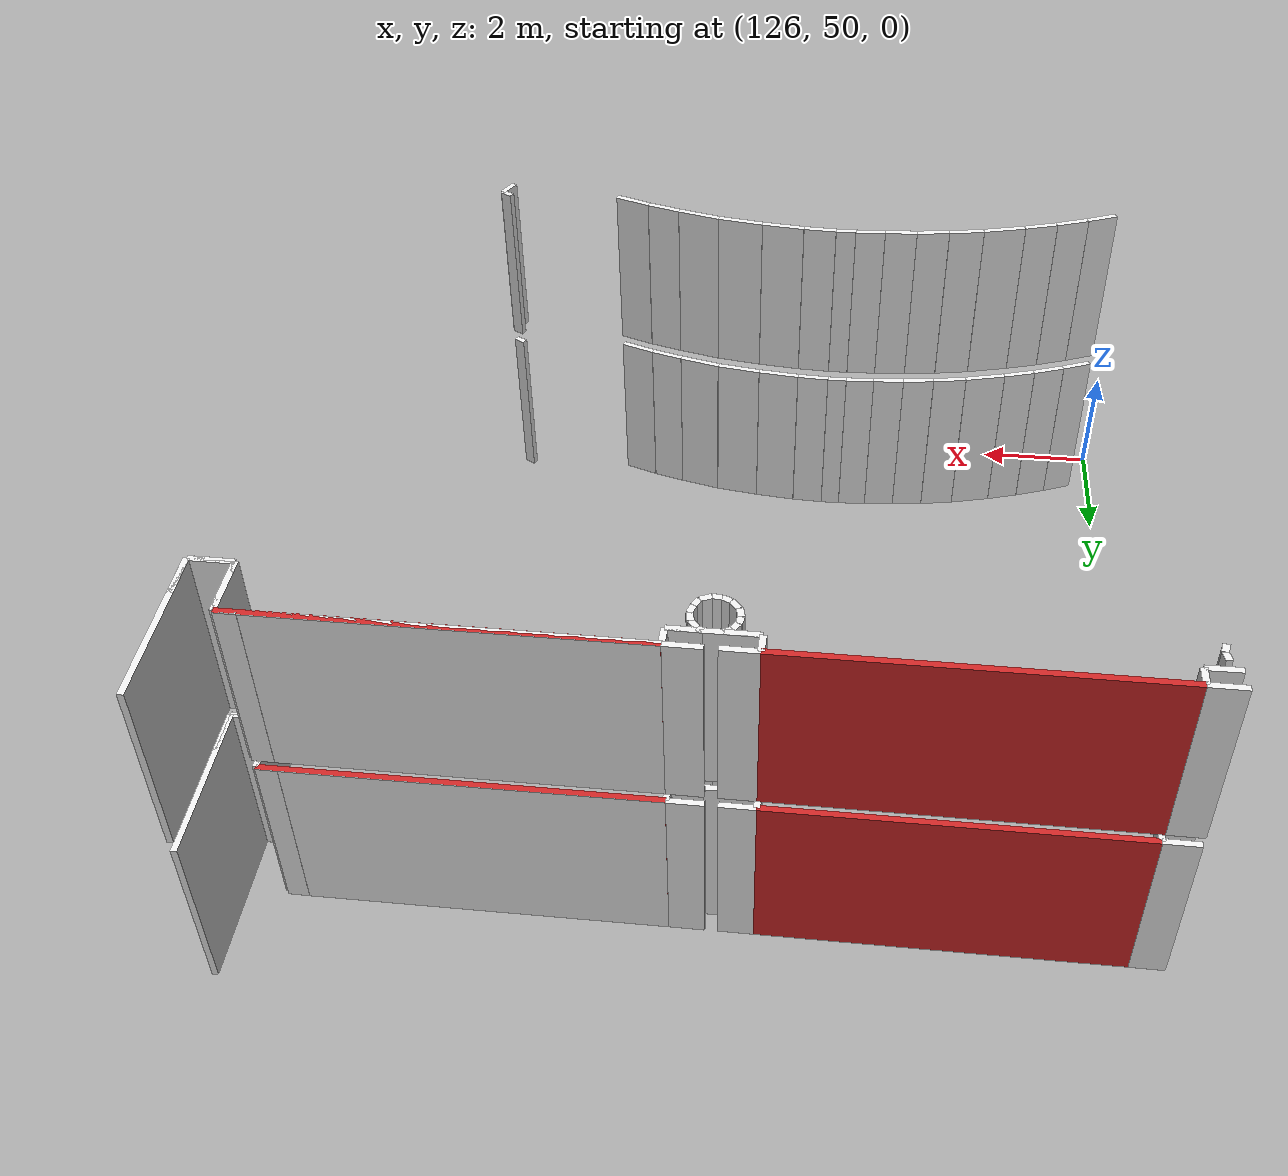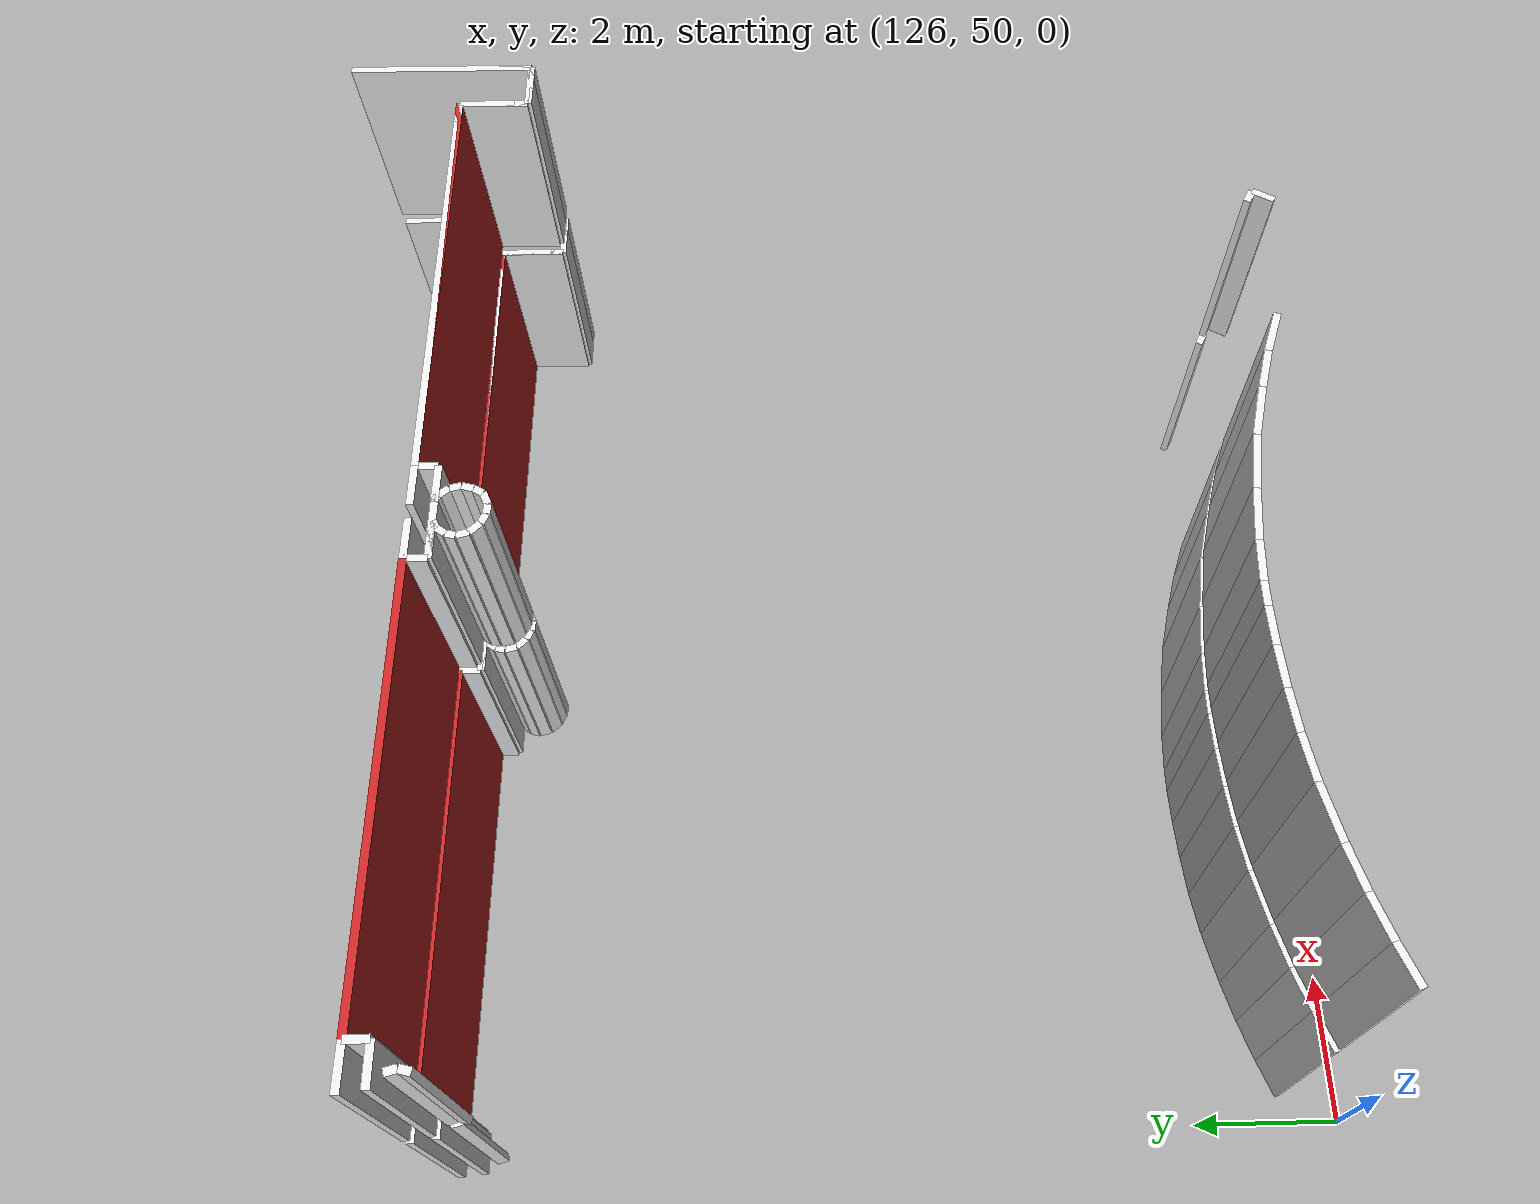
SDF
<sdf version="1.6">
 <world name="default">
  <model name="wall_129.0_62.0_0.0">
   <static>true</static>
   <pose>129.01999999998952 62.049999999813735 1.5 0 0 -0.014034166280132265</pose>
   <link name="link">
    <visual name="visual">
     <geometry><box><size>5.7005613758773475 0.1 3</size></box></geometry>
     <material>
      <script><uri>file://media/materials/scripts/gazebo.material</uri><name>Gazebo/Red</name></script>
     </material>
    </visual>
   </link>
  </model>
  <model name="wall_136.2_62.0_0.0">
   <static>true</static>
   <pose>136.19500000000698 61.950000000186265 1.5 0 0 -0.013266220046968015</pose>
   <link name="link">
    <visual name="visual">
     <geometry><box><size>6.030530656612972 0.1 3</size></box></geometry>
     <material>
      <script><uri>file://media/materials/scripts/gazebo.material</uri><name>Gazebo/Red</name></script>
     </material>
    </visual>
   </link>
  </model>
  <model name="wall_125.9_62.1_0.0">
   <static>true</static>
   <pose>125.88999999998487 62.09499999997206 1.5 0 0 -0.017855245571888664</pose>
   <link name="link">
    <visual name="visual">
     <geometry><box><size>0.5600892785996132 0.1 3</size></box></geometry>
     <material>
      <script><uri>file://media/materials/scripts/gazebo.material</uri><name>Gazebo/White</name></script>
     </material>
    </visual>
   </link>
  </model>
  <model name="wall_132.1_62.0_0.0">
   <static>true</static>
   <pose>132.14999999999418 62.00499999988824 1.5 0 0 -0.017855244740615724</pose>
   <link name="link">
    <visual name="visual">
     <geometry><box><size>0.5600892785912992 0.1 3</size></box></geometry>
     <material>
      <script><uri>file://media/materials/scripts/gazebo.material</uri><name>Gazebo/White</name></script>
     </material>
    </visual>
   </link>
  </model>
  <model name="wall_139.0_61.9_0.0">
   <static>true</static>
   <pose>139.04000000000815 61.91500000003725 1.5 0 0 3.112189366044838</pose>
   <link name="link">
    <visual name="visual">
     <geometry><box><size>0.34014702705292804 0.1 3</size></box></geometry>
     <material>
      <script><uri>file://media/materials/scripts/gazebo.material</uri><name>Gazebo/White</name></script>
     </material>
    </visual>
   </link>
  </model>
  <model name="wall_136.0_62.0_0.0">
   <static>true</static>
   <pose>136.02499999999418 61.955000000074506 1.5 0 0 3.1292909894057774</pose>
   <link name="link">
    <visual name="visual">
     <geometry><box><size>5.690430563680416 0.1 3</size></box></geometry>
     <material>
      <script><uri>file://media/materials/scripts/gazebo.material</uri><name>Gazebo/White</name></script>
     </material>
    </visual>
   </link>
  </model>
  <model name="wall_132.9_62.0_0.0">
   <static>true</static>
   <pose>132.89999999999418 61.99500000011176 1.5 0 0 3.1237374088491774</pose>
   <link name="link">
    <visual name="visual">
     <geometry><box><size>0.5600892785912992 0.1 3</size></box></geometry>
     <material>
      <script><uri>file://media/materials/scripts/gazebo.material</uri><name>Gazebo/White</name></script>
     </material>
    </visual>
   </link>
  </model>
  <model name="wall_137.2_51.0_0.0">
   <static>true</static>
   <pose>137.19999999998254 51.0 1.5 0 0 2.6344941507624737</pose>
   <link name="link">
    <visual name="visual">
     <geometry><box><size>0.205912602632718 0.1 3</size></box></geometry>
     <material>
      <script><uri>file://media/materials/scripts/gazebo.material</uri><name>Gazebo/White</name></script>
     </material>
    </visual>
   </link>
  </model>
  <model name="wall_134.9_51.0_0.0">
   <static>true</static>
   <pose>134.91500000000815 51.03500000014901 1.5 0 0 2.799642826681837</pose>
   <link name="link">
    <visual name="visual">
     <geometry><box><size>0.6262587324856838 0.1 3</size></box></geometry>
     <material>
      <script><uri>file://media/materials/scripts/gazebo.material</uri><name>Gazebo/White</name></script>
     </material>
    </visual>
   </link>
  </model>
  <model name="wall_134.3_51.2_0.0">
   <static>true</static>
   <pose>134.3399999999965 51.21999999997206 1.5 0 0 2.863292995106354</pose>
   <link name="link">
    <visual name="visual">
     <geometry><box><size>0.5824087910532124 0.1 3</size></box></geometry>
     <material>
      <script><uri>file://media/materials/scripts/gazebo.material</uri><name>Gazebo/White</name></script>
     </material>
    </visual>
   </link>
  </model>
  <model name="wall_133.7_51.4_0.0">
   <static>true</static>
   <pose>133.70000000001164 51.389999999897555 1.5 0 0 2.896613990234664</pose>
   <link name="link">
    <visual name="visual">
     <geometry><box><size>0.7421590126247316 0.1 3</size></box></geometry>
     <material>
      <script><uri>file://media/materials/scripts/gazebo.material</uri><name>Gazebo/White</name></script>
     </material>
    </visual>
   </link>
  </model>
  <model name="wall_133.0_51.5_0.0">
   <static>true</static>
   <pose>132.95000000001164 51.54000000003725 1.5 0 0 2.9889433250599438</pose>
   <link name="link">
    <visual name="visual">
     <geometry><box><size>0.7891767863225628 0.1 3</size></box></geometry>
     <material>
      <script><uri>file://media/materials/scripts/gazebo.material</uri><name>Gazebo/White</name></script>
     </material>
    </visual>
   </link>
  </model>
  <model name="wall_132.2_51.6_0.0">
   <static>true</static>
   <pose>132.19500000000698 51.640000000130385 1.5 0 0 3.0324391905773007</pose>
   <link name="link">
    <visual name="visual">
     <geometry><box><size>0.7343704786990871 0.1 3</size></box></geometry>
     <material>
      <script><uri>file://media/materials/scripts/gazebo.material</uri><name>Gazebo/White</name></script>
     </material>
    </visual>
   </link>
  </model>
  <model name="wall_131.6_51.7_0.0">
   <static>true</static>
   <pose>131.55000000001746 51.69500000006519 1.5 0 0 3.0880723854950856</pose>
   <link name="link">
    <visual name="visual">
     <geometry><box><size>0.5608029956991125 0.1 3</size></box></geometry>
     <material>
      <script><uri>file://media/materials/scripts/gazebo.material</uri><name>Gazebo/White</name></script>
     </material>
    </visual>
   </link>
  </model>
  <model name="wall_131.1_51.7_0.0">
   <static>true</static>
   <pose>131.10000000000582 51.70999999996275 1.5 0 0 3.141592653589793</pose>
   <link name="link">
    <visual name="visual">
     <geometry><box><size>0.34000000002561137 0.1 3</size></box></geometry>
     <material>
      <script><uri>file://media/materials/scripts/gazebo.material</uri><name>Gazebo/White</name></script>
     </material>
    </visual>
   </link>
  </model>
  <model name="wall_130.7_51.7_0.0">
   <static>true</static>
   <pose>130.67499999998836 51.699999999953434 1.5 0 0 -3.102397051626987</pose>
   <link name="link">
    <visual name="visual">
     <geometry><box><size>0.5103920062170298 0.1 3</size></box></geometry>
     <material>
      <script><uri>file://media/materials/scripts/gazebo.material</uri><name>Gazebo/White</name></script>
     </material>
    </visual>
   </link>
  </model>
  <model name="wall_130.1_51.7_0.0">
   <static>true</static>
   <pose>130.14499999998952 51.669999999925494 1.5 0 0 -3.068993199790391</pose>
   <link name="link">
    <visual name="visual">
     <geometry><box><size>0.5514526271495808 0.1 3</size></box></geometry>
     <material>
      <script><uri>file://media/materials/scripts/gazebo.material</uri><name>Gazebo/White</name></script>
     </material>
    </visual>
   </link>
  </model>
  <model name="wall_129.6_51.6_0.0">
   <static>true</static>
   <pose>129.5899999999965 51.61999999987893 1.5 0 0 -3.0348569808415653</pose>
   <link name="link">
    <visual name="visual">
     <geometry><box><size>0.5632051136167868 0.1 3</size></box></geometry>
     <material>
      <script><uri>file://media/materials/scripts/gazebo.material</uri><name>Gazebo/White</name></script>
     </material>
    </visual>
   </link>
  </model>
  <model name="wall_129.0_51.5_0.0">
   <static>true</static>
   <pose>129.0100000000093 51.54000000003725 1.5 0 0 -2.9764439767729747</pose>
   <link name="link">
    <visual name="visual">
     <geometry><box><size>0.6082762529456124 0.1 3</size></box></geometry>
     <material>
      <script><uri>file://media/materials/scripts/gazebo.material</uri><name>Gazebo/White</name></script>
     </material>
    </visual>
   </link>
  </model>
  <model name="wall_128.4_51.4_0.0">
   <static>true</static>
   <pose>128.35000000000582 51.40500000002794 1.5 0 0 -2.909727992235222</pose>
   <link name="link">
    <visual name="visual">
     <geometry><box><size>0.7397972696466099 0.1 3</size></box></geometry>
     <material>
      <script><uri>file://media/materials/scripts/gazebo.material</uri><name>Gazebo/White</name></script>
     </material>
    </visual>
   </link>
  </model>
  <model name="wall_127.7_51.2_0.0">
   <static>true</static>
   <pose>127.70999999999185 51.23999999999069 1.5 0 0 -2.863292995106354</pose>
   <link name="link">
    <visual name="visual">
     <geometry><box><size>0.5824087910532124 0.1 3</size></box></geometry>
     <material>
      <script><uri>file://media/materials/scripts/gazebo.material</uri><name>Gazebo/White</name></script>
     </material>
    </visual>
   </link>
  </model>
  <model name="wall_127.2_51.1_0.0">
   <static>true</static>
   <pose>127.15499999999884 51.06500000017695 1.5 0 0 -2.8089729621001154</pose>
   <link name="link">
    <visual name="visual">
     <geometry><box><size>0.581893461009797 0.1 3</size></box></geometry>
     <material>
      <script><uri>file://media/materials/scripts/gazebo.material</uri><name>Gazebo/White</name></script>
     </material>
    </visual>
   </link>
  </model>
  <model name="wall_126.6_50.9_0.0">
   <static>true</static>
   <pose>126.625 50.87000000011176 1.5 0 0 -2.7678658333139023</pose>
   <link name="link">
    <visual name="visual">
     <geometry><box><size>0.5478138370687667 0.1 3</size></box></geometry>
     <material>
      <script><uri>file://media/materials/scripts/gazebo.material</uri><name>Gazebo/White</name></script>
     </material>
    </visual>
   </link>
  </model>
  <model name="wall_125.8_61.6_0.0">
   <static>true</static>
   <pose>125.83999999999651 61.55499999993481 1.5 0 0 1.8313987185663902</pose>
   <link name="link">
    <visual name="visual">
     <geometry><box><size>0.15524174686721334 0.1 3</size></box></geometry>
     <material>
      <script><uri>file://media/materials/scripts/gazebo.material</uri><name>Gazebo/White</name></script>
     </material>
    </visual>
   </link>
  </model>
  <model name="wall_125.9_61.8_0.0">
   <static>true</static>
   <pose>125.91000000000349 61.79000000003725 1.5 0 0 0.0</pose>
   <link name="link">
    <visual name="visual">
     <geometry><box><size>0.5199999999604188 0.1 3</size></box></geometry>
     <material>
      <script><uri>file://media/materials/scripts/gazebo.material</uri><name>Gazebo/White</name></script>
     </material>
    </visual>
   </link>
  </model>
  <model name="wall_126.2_61.9_0.0">
   <static>true</static>
   <pose>126.1699999999837 61.93999999994412 1.5 0 0 1.5707963267948966</pose>
   <link name="link">
    <visual name="visual">
     <geometry><box><size>0.2999999998137355 0.1 3</size></box></geometry>
     <material>
      <script><uri>file://media/materials/scripts/gazebo.material</uri><name>Gazebo/White</name></script>
     </material>
    </visual>
   </link>
  </model>
  <model name="wall_131.9_61.9_0.0">
   <static>true</static>
   <pose>131.8649999999907 61.859999999869615 1.5 0 0 -1.6041173227248264</pose>
   <link name="link">
    <visual name="visual">
     <geometry><box><size>0.30016662021022184 0.1 3</size></box></geometry>
     <material>
      <script><uri>file://media/materials/scripts/gazebo.material</uri><name>Gazebo/White</name></script>
     </material>
    </visual>
   </link>
  </model>
  <model name="wall_132.1_61.7_0.0">
   <static>true</static>
   <pose>132.11999999999534 61.705000000074506 1.5 0 0 -0.01922839866933633</pose>
   <link name="link">
    <visual name="visual">
     <geometry><box><size>0.5200961449721592 0.1 3</size></box></geometry>
     <material>
      <script><uri>file://media/materials/scripts/gazebo.material</uri><name>Gazebo/White</name></script>
     </material>
    </visual>
   </link>
  </model>
  <model name="wall_132.3_61.7_0.0">
   <static>true</static>
   <pose>132.3300000000163 61.670000000158325 1.5 0 0 -2.601173152805612</pose>
   <link name="link">
    <visual name="visual">
     <geometry><box><size>0.11661903790569063 0.1 3</size></box></geometry>
     <material>
      <script><uri>file://media/materials/scripts/gazebo.material</uri><name>Gazebo/White</name></script>
     </material>
    </visual>
   </link>
  </model>
  <model name="wall_132.2_61.6_0.0">
   <static>true</static>
   <pose>132.2400000000198 61.58499999996275 1.5 0 0 -2.199592611857395</pose>
   <link name="link">
    <visual name="visual">
     <geometry><box><size>0.13601470536809043 0.1 3</size></box></geometry>
     <material>
      <script><uri>file://media/materials/scripts/gazebo.material</uri><name>Gazebo/White</name></script>
     </material>
    </visual>
   </link>
  </model>
  <model name="wall_132.2_61.5_0.0">
   <static>true</static>
   <pose>132.18499999999767 61.46499999985099 1.5 0 0 -1.7975951752411936</pose>
   <link name="link">
    <visual name="visual">
     <geometry><box><size>0.13341664053864913 0.1 3</size></box></geometry>
     <material>
      <script><uri>file://media/materials/scripts/gazebo.material</uri><name>Gazebo/White</name></script>
     </material>
    </visual>
   </link>
  </model>
  <model name="wall_132.2_61.3_0.0">
   <static>true</static>
   <pose>132.19000000000233 61.32000000006519 1.5 0 0 -1.3258176629832366</pose>
   <link name="link">
    <visual name="visual">
     <geometry><box><size>0.16492422472654628 0.1 3</size></box></geometry>
     <material>
      <script><uri>file://media/materials/scripts/gazebo.material</uri><name>Gazebo/White</name></script>
     </material>
    </visual>
   </link>
  </model>
  <model name="wall_132.3_61.2_0.0">
   <static>true</static>
   <pose>132.27000000001863 61.175000000046566 1.5 0 0 -0.8253768518968939</pose>
   <link name="link">
    <visual name="visual">
     <geometry><box><size>0.17691806038643168 0.1 3</size></box></geometry>
     <material>
      <script><uri>file://media/materials/scripts/gazebo.material</uri><name>Gazebo/White</name></script>
     </material>
    </visual>
   </link>
  </model>
  <model name="wall_132.4_61.1_0.0">
   <static>true</static>
   <pose>132.39500000001863 61.079999999841675 1.5 0 0 -0.4324077759112656</pose>
   <link name="link">
    <visual name="visual">
     <geometry><box><size>0.14317821066040826 0.1 3</size></box></geometry>
     <material>
      <script><uri>file://media/materials/scripts/gazebo.material</uri><name>Gazebo/White</name></script>
     </material>
    </visual>
   </link>
  </model>
  <model name="wall_132.5_61.0_0.0">
   <static>true</static>
   <pose>132.52999999999884 61.044999999925494 1.5 0 0 -0.07130746321929742</pose>
   <link name="link">
    <visual name="visual">
     <geometry><box><size>0.14035668841613164 0.1 3</size></box></geometry>
     <material>
      <script><uri>file://media/materials/scripts/gazebo.material</uri><name>Gazebo/White</name></script>
     </material>
    </visual>
   </link>
  </model>
  <model name="wall_132.7_61.1_0.0">
   <static>true</static>
   <pose>132.67999999999302 61.074999999953434 1.5 0 0 0.41241044064316335</pose>
   <link name="link">
    <visual name="visual">
     <geometry><box><size>0.17464249192840064 0.1 3</size></box></geometry>
     <material>
      <script><uri>file://media/materials/scripts/gazebo.material</uri><name>Gazebo/White</name></script>
     </material>
    </visual>
   </link>
  </model>
  <model name="wall_132.8_61.2_0.0">
   <static>true</static>
   <pose>132.7950000000128 61.169999999925494 1.5 0 0 1.04272187873045</pose>
   <link name="link">
    <visual name="visual">
     <geometry><box><size>0.13892443999455237 0.1 3</size></box></geometry>
     <material>
      <script><uri>file://media/materials/scripts/gazebo.material</uri><name>Gazebo/White</name></script>
     </material>
    </visual>
   </link>
  </model>
  <model name="wall_132.9_61.3_0.0">
   <static>true</static>
   <pose>132.85000000000582 61.30499999993481 1.5 0 0 1.310193935023403</pose>
   <link name="link">
    <visual name="visual">
     <geometry><box><size>0.15524174686721334 0.1 3</size></box></geometry>
     <material>
      <script><uri>file://media/materials/scripts/gazebo.material</uri><name>Gazebo/White</name></script>
     </material>
    </visual>
   </link>
  </model>
  <model name="wall_132.9_61.5_0.0">
   <static>true</static>
   <pose>132.85500000001048 61.454999999841675 1.5 0 0 1.7681918865701522</pose>
   <link name="link">
    <visual name="visual">
     <geometry><box><size>0.15297058531052382 0.1 3</size></box></geometry>
     <material>
      <script><uri>file://media/materials/scripts/gazebo.material</uri><name>Gazebo/White</name></script>
     </material>
    </visual>
   </link>
  </model>
  <model name="wall_132.8_61.6_0.0">
   <static>true</static>
   <pose>132.79000000000815 61.59499999997206 1.5 0 0 2.2264919518895905</pose>
   <link name="link">
    <visual name="visual">
     <geometry><box><size>0.16401219497037284 0.1 3</size></box></geometry>
     <material>
      <script><uri>file://media/materials/scripts/gazebo.material</uri><name>Gazebo/White</name></script>
     </material>
    </visual>
   </link>
  </model>
  <model name="wall_132.7_61.7_0.0">
   <static>true</static>
   <pose>132.69999999998254 61.68000000016764 1.5 0 0 2.6779450442979487</pose>
   <link name="link">
    <visual name="visual">
     <geometry><box><size>0.0894427191312291 0.1 3</size></box></geometry>
     <material>
      <script><uri>file://media/materials/scripts/gazebo.material</uri><name>Gazebo/White</name></script>
     </material>
    </visual>
   </link>
  </model>
  <model name="wall_132.9_61.7_0.0">
   <static>true</static>
   <pose>132.91499999997905 61.69500000006519 1.5 0 0 -0.019605331331456193</pose>
   <link name="link">
    <visual name="visual">
     <geometry><box><size>0.5100980298083324 0.1 3</size></box></geometry>
     <material>
      <script><uri>file://media/materials/scripts/gazebo.material</uri><name>Gazebo/White</name></script>
     </material>
    </visual>
   </link>
  </model>
  <model name="wall_133.2_61.8_0.0">
   <static>true</static>
   <pose>133.17499999998836 61.84000000008382 1.5 0 0 1.5374753309166493</pose>
   <link name="link">
    <visual name="visual">
     <geometry><box><size>0.30016662067562466 0.1 3</size></box></geometry>
     <material>
      <script><uri>file://media/materials/scripts/gazebo.material</uri><name>Gazebo/White</name></script>
     </material>
    </visual>
   </link>
  </model>
  <model name="wall_139.2_61.5_0.0">
   <static>true</static>
   <pose>139.2050000000163 61.5250000001397 1.5 0 0 -1.5837826097268481</pose>
   <link name="link">
    <visual name="visual">
     <geometry><box><size>0.770064932345884 0.1 3</size></box></geometry>
     <material>
      <script><uri>file://media/materials/scripts/gazebo.material</uri><name>Gazebo/White</name></script>
     </material>
    </visual>
   </link>
  </model>
  <model name="wall_139.2_61.0_0.0">
   <static>true</static>
   <pose>139.19500000000698 61.045000000158325 1.5 0 0 -1.6233793884701562</pose>
   <link name="link">
    <visual name="visual">
     <geometry><box><size>0.19026297584909185 0.1 3</size></box></geometry>
     <material>
      <script><uri>file://media/materials/scripts/gazebo.material</uri><name>Gazebo/White</name></script>
     </material>
    </visual>
   </link>
  </model>
  <model name="wall_139.4_60.9_0.0">
   <static>true</static>
   <pose>139.4100000000035 60.94500000006519 1.5 0 0 -0.022723361391563727</pose>
   <link name="link">
    <visual name="visual">
     <geometry><box><size>0.44011362170113727 0.1 3</size></box></geometry>
     <material>
      <script><uri>file://media/materials/scripts/gazebo.material</uri><name>Gazebo/White</name></script>
     </material>
    </visual>
   </link>
  </model>
  <model name="wall_139.8_60.9_0.0">
   <static>true</static>
   <pose>139.75500000000466 60.93999999994412 1.5 0 0 0.0</pose>
   <link name="link">
    <visual name="visual">
     <geometry><box><size>0.25 0.1 3</size></box></geometry>
     <material>
      <script><uri>file://media/materials/scripts/gazebo.material</uri><name>Gazebo/White</name></script>
     </material>
    </visual>
   </link>
  </model>
  <model name="wall_139.9_61.3_0.0">
   <static>true</static>
   <pose>139.8850000000093 61.28499999991618 1.5 0 0 1.5563045877147286</pose>
   <link name="link">
    <visual name="visual">
     <geometry><box><size>0.6900724599077062 0.1 3</size></box></geometry>
     <material>
      <script><uri>file://media/materials/scripts/gazebo.material</uri><name>Gazebo/White</name></script>
     </material>
    </visual>
   </link>
  </model>
  <model name="wall_132.5_61.7_0.0">
   <static>true</static>
   <pose>132.51499999998487 61.699999999953434 1.5 0 0 -0.015265989561022346</pose>
   <link name="link">
    <visual name="visual">
     <geometry><box><size>1.3101526628582811 0.1 3</size></box></geometry>
     <material>
      <script><uri>file://media/materials/scripts/gazebo.material</uri><name>Gazebo/White</name></script>
     </material>
    </visual>
   </link>
  </model>
  <model name="wall_139.2_61.4_0.0">
   <static>true</static>
   <pose>139.20000000001164 61.43000000016764 1.5 0 0 -1.5916266468513158</pose>
   <link name="link">
    <visual name="visual">
     <geometry><box><size>0.9602083106957674 0.1 3</size></box></geometry>
     <material>
      <script><uri>file://media/materials/scripts/gazebo.material</uri><name>Gazebo/White</name></script>
     </material>
    </visual>
   </link>
  </model>
  <model name="wall_139.5_60.9_0.0">
   <static>true</static>
   <pose>139.5350000000035 60.94500000006519 1.5 0 0 -0.014491739416310578</pose>
   <link name="link">
    <visual name="visual">
     <geometry><box><size>0.6900724599692818 0.1 3</size></box></geometry>
     <material>
      <script><uri>file://media/materials/scripts/gazebo.material</uri><name>Gazebo/White</name></script>
     </material>
    </visual>
   </link>
  </model>
  <model name="wall_139.9_62.2_0.0">
   <static>true</static>
   <pose>139.89499999998952 62.2249999998603 1.5 0 0 1.559123705215765</pose>
   <link name="link">
    <visual name="visual">
     <geometry><box><size>2.570175091143894 0.1 3</size></box></geometry>
     <material>
      <script><uri>file://media/materials/scripts/gazebo.material</uri><name>Gazebo/White</name></script>
     </material>
    </visual>
   </link>
  </model>
  <model name="wall_129.0_62.0_3.2">
   <static>true</static>
   <pose>129.01999999998952 62.049999999813735 4.7 0 0 -0.014034166280132265</pose>
   <link name="link">
    <visual name="visual">
     <geometry><box><size>5.7005613758773475 0.1 3</size></box></geometry>
     <material>
      <script><uri>file://media/materials/scripts/gazebo.material</uri><name>Gazebo/Red</name></script>
     </material>
    </visual>
   </link>
  </model>
  <model name="wall_136.2_62.0_3.2">
   <static>true</static>
   <pose>136.19500000000698 61.950000000186265 4.7 0 0 -0.013266220046968015</pose>
   <link name="link">
    <visual name="visual">
     <geometry><box><size>6.030530656612972 0.1 3</size></box></geometry>
     <material>
      <script><uri>file://media/materials/scripts/gazebo.material</uri><name>Gazebo/Red</name></script>
     </material>
    </visual>
   </link>
  </model>
  <model name="wall_125.9_62.1_3.2">
   <static>true</static>
   <pose>125.88999999998487 62.09499999997206 4.7 0 0 -0.017855245571888664</pose>
   <link name="link">
    <visual name="visual">
     <geometry><box><size>0.5600892785996132 0.1 3</size></box></geometry>
     <material>
      <script><uri>file://media/materials/scripts/gazebo.material</uri><name>Gazebo/White</name></script>
     </material>
    </visual>
   </link>
  </model>
  <model name="wall_132.1_62.0_3.2">
   <static>true</static>
   <pose>132.14999999999418 62.00499999988824 4.7 0 0 -0.017855244740615724</pose>
   <link name="link">
    <visual name="visual">
     <geometry><box><size>0.5600892785912992 0.1 3</size></box></geometry>
     <material>
      <script><uri>file://media/materials/scripts/gazebo.material</uri><name>Gazebo/White</name></script>
     </material>
    </visual>
   </link>
  </model>
  <model name="wall_139.0_61.9_3.2">
   <static>true</static>
   <pose>139.04000000000815 61.91500000003725 4.7 0 0 3.112189366044838</pose>
   <link name="link">
    <visual name="visual">
     <geometry><box><size>0.34014702705292804 0.1 3</size></box></geometry>
     <material>
      <script><uri>file://media/materials/scripts/gazebo.material</uri><name>Gazebo/White</name></script>
     </material>
    </visual>
   </link>
  </model>
  <model name="wall_136.0_62.0_3.2">
   <static>true</static>
   <pose>136.02499999999418 61.955000000074506 4.7 0 0 3.1292909894057774</pose>
   <link name="link">
    <visual name="visual">
     <geometry><box><size>5.690430563680416 0.1 3</size></box></geometry>
     <material>
      <script><uri>file://media/materials/scripts/gazebo.material</uri><name>Gazebo/White</name></script>
     </material>
    </visual>
   </link>
  </model>
  <model name="wall_132.9_62.0_3.2">
   <static>true</static>
   <pose>132.89999999999418 61.99500000011176 4.7 0 0 3.1237374088491774</pose>
   <link name="link">
    <visual name="visual">
     <geometry><box><size>0.5600892785912992 0.1 3</size></box></geometry>
     <material>
      <script><uri>file://media/materials/scripts/gazebo.material</uri><name>Gazebo/White</name></script>
     </material>
    </visual>
   </link>
  </model>
  <model name="wall_137.2_50.8_3.2">
   <static>true</static>
   <pose>137.20999999999185 50.81000000005588 4.7 0 0 1.0516502130185124</pose>
   <link name="link">
    <visual name="visual">
     <geometry><box><size>0.3224903101456472 0.1 3</size></box></geometry>
     <material>
      <script><uri>file://media/materials/scripts/gazebo.material</uri><name>Gazebo/White</name></script>
     </material>
    </visual>
   </link>
  </model>
  <model name="wall_137.2_51.0_3.2">
   <static>true</static>
   <pose>137.19999999998254 51.0 4.7 0 0 2.6344941507624737</pose>
   <link name="link">
    <visual name="visual">
     <geometry><box><size>0.205912602632718 0.1 3</size></box></geometry>
     <material>
      <script><uri>file://media/materials/scripts/gazebo.material</uri><name>Gazebo/White</name></script>
     </material>
    </visual>
   </link>
  </model>
  <model name="wall_134.9_51.0_3.2">
   <static>true</static>
   <pose>134.91500000000815 51.03500000014901 4.7 0 0 2.799642826681837</pose>
   <link name="link">
    <visual name="visual">
     <geometry><box><size>0.6262587324856838 0.1 3</size></box></geometry>
     <material>
      <script><uri>file://media/materials/scripts/gazebo.material</uri><name>Gazebo/White</name></script>
     </material>
    </visual>
   </link>
  </model>
  <model name="wall_134.3_51.2_3.2">
   <static>true</static>
   <pose>134.3399999999965 51.21999999997206 4.7 0 0 2.863292995106354</pose>
   <link name="link">
    <visual name="visual">
     <geometry><box><size>0.5824087910532124 0.1 3</size></box></geometry>
     <material>
      <script><uri>file://media/materials/scripts/gazebo.material</uri><name>Gazebo/White</name></script>
     </material>
    </visual>
   </link>
  </model>
  <model name="wall_133.7_51.4_3.2">
   <static>true</static>
   <pose>133.70000000001164 51.389999999897555 4.7 0 0 2.896613990234664</pose>
   <link name="link">
    <visual name="visual">
     <geometry><box><size>0.7421590126247316 0.1 3</size></box></geometry>
     <material>
      <script><uri>file://media/materials/scripts/gazebo.material</uri><name>Gazebo/White</name></script>
     </material>
    </visual>
   </link>
  </model>
  <model name="wall_133.0_51.5_3.2">
   <static>true</static>
   <pose>132.95000000001164 51.54000000003725 4.7 0 0 2.9889433250599438</pose>
   <link name="link">
    <visual name="visual">
     <geometry><box><size>0.7891767863225628 0.1 3</size></box></geometry>
     <material>
      <script><uri>file://media/materials/scripts/gazebo.material</uri><name>Gazebo/White</name></script>
     </material>
    </visual>
   </link>
  </model>
  <model name="wall_132.2_51.6_3.2">
   <static>true</static>
   <pose>132.19500000000698 51.640000000130385 4.7 0 0 3.0324391905773007</pose>
   <link name="link">
    <visual name="visual">
     <geometry><box><size>0.7343704786990871 0.1 3</size></box></geometry>
     <material>
      <script><uri>file://media/materials/scripts/gazebo.material</uri><name>Gazebo/White</name></script>
     </material>
    </visual>
   </link>
  </model>
  <model name="wall_131.6_51.7_3.2">
   <static>true</static>
   <pose>131.55000000001746 51.69500000006519 4.7 0 0 3.0880723854950856</pose>
   <link name="link">
    <visual name="visual">
     <geometry><box><size>0.5608029956991125 0.1 3</size></box></geometry>
     <material>
      <script><uri>file://media/materials/scripts/gazebo.material</uri><name>Gazebo/White</name></script>
     </material>
    </visual>
   </link>
  </model>
  <model name="wall_131.1_51.7_3.2">
   <static>true</static>
   <pose>131.10000000000582 51.70999999996275 4.7 0 0 3.141592653589793</pose>
   <link name="link">
    <visual name="visual">
     <geometry><box><size>0.34000000002561137 0.1 3</size></box></geometry>
     <material>
      <script><uri>file://media/materials/scripts/gazebo.material</uri><name>Gazebo/White</name></script>
     </material>
    </visual>
   </link>
  </model>
  <model name="wall_130.7_51.7_3.2">
   <static>true</static>
   <pose>130.67499999998836 51.699999999953434 4.7 0 0 -3.102397051626987</pose>
   <link name="link">
    <visual name="visual">
     <geometry><box><size>0.5103920062170298 0.1 3</size></box></geometry>
     <material>
      <script><uri>file://media/materials/scripts/gazebo.material</uri><name>Gazebo/White</name></script>
     </material>
    </visual>
   </link>
  </model>
  <model name="wall_130.1_51.7_3.2">
   <static>true</static>
   <pose>130.14499999998952 51.669999999925494 4.7 0 0 -3.068993199790391</pose>
   <link name="link">
    <visual name="visual">
     <geometry><box><size>0.5514526271495808 0.1 3</size></box></geometry>
     <material>
      <script><uri>file://media/materials/scripts/gazebo.material</uri><name>Gazebo/White</name></script>
     </material>
    </visual>
   </link>
  </model>
  <model name="wall_129.6_51.6_3.2">
   <static>true</static>
   <pose>129.5899999999965 51.61999999987893 4.7 0 0 -3.0348569808415653</pose>
   <link name="link">
    <visual name="visual">
     <geometry><box><size>0.5632051136167868 0.1 3</size></box></geometry>
     <material>
      <script><uri>file://media/materials/scripts/gazebo.material</uri><name>Gazebo/White</name></script>
     </material>
    </visual>
   </link>
  </model>
  <model name="wall_129.0_51.5_3.2">
   <static>true</static>
   <pose>129.0100000000093 51.54000000003725 4.7 0 0 -2.9764439767729747</pose>
   <link name="link">
    <visual name="visual">
     <geometry><box><size>0.6082762529456124 0.1 3</size></box></geometry>
     <material>
      <script><uri>file://media/materials/scripts/gazebo.material</uri><name>Gazebo/White</name></script>
     </material>
    </visual>
   </link>
  </model>
  <model name="wall_128.4_51.4_3.2">
   <static>true</static>
   <pose>128.35000000000582 51.40500000002794 4.7 0 0 -2.909727992235222</pose>
   <link name="link">
    <visual name="visual">
     <geometry><box><size>0.7397972696466099 0.1 3</size></box></geometry>
     <material>
      <script><uri>file://media/materials/scripts/gazebo.material</uri><name>Gazebo/White</name></script>
     </material>
    </visual>
   </link>
  </model>
  <model name="wall_127.7_51.2_3.2">
   <static>true</static>
   <pose>127.70999999999185 51.23999999999069 4.7 0 0 -2.863292995106354</pose>
   <link name="link">
    <visual name="visual">
     <geometry><box><size>0.5824087910532124 0.1 3</size></box></geometry>
     <material>
      <script><uri>file://media/materials/scripts/gazebo.material</uri><name>Gazebo/White</name></script>
     </material>
    </visual>
   </link>
  </model>
  <model name="wall_127.2_51.1_3.2">
   <static>true</static>
   <pose>127.15499999999884 51.06500000017695 4.7 0 0 -2.8089729621001154</pose>
   <link name="link">
    <visual name="visual">
     <geometry><box><size>0.581893461009797 0.1 3</size></box></geometry>
     <material>
      <script><uri>file://media/materials/scripts/gazebo.material</uri><name>Gazebo/White</name></script>
     </material>
    </visual>
   </link>
  </model>
  <model name="wall_126.6_50.9_3.2">
   <static>true</static>
   <pose>126.625 50.87000000011176 4.7 0 0 -2.7678658333139023</pose>
   <link name="link">
    <visual name="visual">
     <geometry><box><size>0.5478138370687667 0.1 3</size></box></geometry>
     <material>
      <script><uri>file://media/materials/scripts/gazebo.material</uri><name>Gazebo/White</name></script>
     </material>
    </visual>
   </link>
  </model>
  <model name="wall_125.8_61.4_3.2">
   <static>true</static>
   <pose>125.83999999999651 61.40500000002794 4.7 0 0 1.310193935023403</pose>
   <link name="link">
    <visual name="visual">
     <geometry><box><size>0.15524174686721334 0.1 3</size></box></geometry>
     <material>
      <script><uri>file://media/materials/scripts/gazebo.material</uri><name>Gazebo/White</name></script>
     </material>
    </visual>
   </link>
  </model>
  <model name="wall_125.8_61.6_3.2">
   <static>true</static>
   <pose>125.83999999999651 61.55499999993481 4.7 0 0 1.8313987185663902</pose>
   <link name="link">
    <visual name="visual">
     <geometry><box><size>0.15524174686721334 0.1 3</size></box></geometry>
     <material>
      <script><uri>file://media/materials/scripts/gazebo.material</uri><name>Gazebo/White</name></script>
     </material>
    </visual>
   </link>
  </model>
  <model name="wall_125.9_61.8_3.2">
   <static>true</static>
   <pose>125.91000000000349 61.79000000003725 4.7 0 0 0.0</pose>
   <link name="link">
    <visual name="visual">
     <geometry><box><size>0.5199999999604188 0.1 3</size></box></geometry>
     <material>
      <script><uri>file://media/materials/scripts/gazebo.material</uri><name>Gazebo/White</name></script>
     </material>
    </visual>
   </link>
  </model>
  <model name="wall_126.2_61.9_3.2">
   <static>true</static>
   <pose>126.1699999999837 61.93999999994412 4.7 0 0 1.5707963267948966</pose>
   <link name="link">
    <visual name="visual">
     <geometry><box><size>0.2999999998137355 0.1 3</size></box></geometry>
     <material>
      <script><uri>file://media/materials/scripts/gazebo.material</uri><name>Gazebo/White</name></script>
     </material>
    </visual>
   </link>
  </model>
  <model name="wall_131.9_61.9_3.2">
   <static>true</static>
   <pose>131.8649999999907 61.859999999869615 4.7 0 0 -1.6041173227248264</pose>
   <link name="link">
    <visual name="visual">
     <geometry><box><size>0.30016662021022184 0.1 3</size></box></geometry>
     <material>
      <script><uri>file://media/materials/scripts/gazebo.material</uri><name>Gazebo/White</name></script>
     </material>
    </visual>
   </link>
  </model>
  <model name="wall_132.1_61.7_3.2">
   <static>true</static>
   <pose>132.11999999999534 61.705000000074506 4.7 0 0 -0.01922839866933633</pose>
   <link name="link">
    <visual name="visual">
     <geometry><box><size>0.5200961449721592 0.1 3</size></box></geometry>
     <material>
      <script><uri>file://media/materials/scripts/gazebo.material</uri><name>Gazebo/White</name></script>
     </material>
    </visual>
   </link>
  </model>
  <model name="wall_132.3_61.7_3.2">
   <static>true</static>
   <pose>132.3300000000163 61.670000000158325 4.7 0 0 -2.601173152805612</pose>
   <link name="link">
    <visual name="visual">
     <geometry><box><size>0.11661903790569063 0.1 3</size></box></geometry>
     <material>
      <script><uri>file://media/materials/scripts/gazebo.material</uri><name>Gazebo/White</name></script>
     </material>
    </visual>
   </link>
  </model>
  <model name="wall_132.2_61.6_3.2">
   <static>true</static>
   <pose>132.2400000000198 61.58499999996275 4.7 0 0 -2.199592611857395</pose>
   <link name="link">
    <visual name="visual">
     <geometry><box><size>0.13601470536809043 0.1 3</size></box></geometry>
     <material>
      <script><uri>file://media/materials/scripts/gazebo.material</uri><name>Gazebo/White</name></script>
     </material>
    </visual>
   </link>
  </model>
  <model name="wall_132.2_61.5_3.2">
   <static>true</static>
   <pose>132.18499999999767 61.46499999985099 4.7 0 0 -1.7975951752411936</pose>
   <link name="link">
    <visual name="visual">
     <geometry><box><size>0.13341664053864913 0.1 3</size></box></geometry>
     <material>
      <script><uri>file://media/materials/scripts/gazebo.material</uri><name>Gazebo/White</name></script>
     </material>
    </visual>
   </link>
  </model>
  <model name="wall_132.2_61.3_3.2">
   <static>true</static>
   <pose>132.19000000000233 61.32000000006519 4.7 0 0 -1.3258176629832366</pose>
   <link name="link">
    <visual name="visual">
     <geometry><box><size>0.16492422472654628 0.1 3</size></box></geometry>
     <material>
      <script><uri>file://media/materials/scripts/gazebo.material</uri><name>Gazebo/White</name></script>
     </material>
    </visual>
   </link>
  </model>
  <model name="wall_132.3_61.2_3.2">
   <static>true</static>
   <pose>132.27000000001863 61.175000000046566 4.7 0 0 -0.8253768518968939</pose>
   <link name="link">
    <visual name="visual">
     <geometry><box><size>0.17691806038643168 0.1 3</size></box></geometry>
     <material>
      <script><uri>file://media/materials/scripts/gazebo.material</uri><name>Gazebo/White</name></script>
     </material>
    </visual>
   </link>
  </model>
  <model name="wall_132.4_61.1_3.2">
   <static>true</static>
   <pose>132.39500000001863 61.079999999841675 4.7 0 0 -0.4324077759112656</pose>
   <link name="link">
    <visual name="visual">
     <geometry><box><size>0.14317821066040826 0.1 3</size></box></geometry>
     <material>
      <script><uri>file://media/materials/scripts/gazebo.material</uri><name>Gazebo/White</name></script>
     </material>
    </visual>
   </link>
  </model>
  <model name="wall_132.5_61.0_3.2">
   <static>true</static>
   <pose>132.52999999999884 61.044999999925494 4.7 0 0 -0.07130746321929742</pose>
   <link name="link">
    <visual name="visual">
     <geometry><box><size>0.14035668841613164 0.1 3</size></box></geometry>
     <material>
      <script><uri>file://media/materials/scripts/gazebo.material</uri><name>Gazebo/White</name></script>
     </material>
    </visual>
   </link>
  </model>
  <model name="wall_132.7_61.1_3.2">
   <static>true</static>
   <pose>132.67999999999302 61.074999999953434 4.7 0 0 0.41241044064316335</pose>
   <link name="link">
    <visual name="visual">
     <geometry><box><size>0.17464249192840064 0.1 3</size></box></geometry>
     <material>
      <script><uri>file://media/materials/scripts/gazebo.material</uri><name>Gazebo/White</name></script>
     </material>
    </visual>
   </link>
  </model>
  <model name="wall_132.8_61.2_3.2">
   <static>true</static>
   <pose>132.7950000000128 61.169999999925494 4.7 0 0 1.04272187873045</pose>
   <link name="link">
    <visual name="visual">
     <geometry><box><size>0.13892443999455237 0.1 3</size></box></geometry>
     <material>
      <script><uri>file://media/materials/scripts/gazebo.material</uri><name>Gazebo/White</name></script>
     </material>
    </visual>
   </link>
  </model>
  <model name="wall_132.9_61.3_3.2">
   <static>true</static>
   <pose>132.85000000000582 61.30499999993481 4.7 0 0 1.310193935023403</pose>
   <link name="link">
    <visual name="visual">
     <geometry><box><size>0.15524174686721334 0.1 3</size></box></geometry>
     <material>
      <script><uri>file://media/materials/scripts/gazebo.material</uri><name>Gazebo/White</name></script>
     </material>
    </visual>
   </link>
  </model>
  <model name="wall_132.9_61.5_3.2">
   <static>true</static>
   <pose>132.85500000001048 61.454999999841675 4.7 0 0 1.7681918865701522</pose>
   <link name="link">
    <visual name="visual">
     <geometry><box><size>0.15297058531052382 0.1 3</size></box></geometry>
     <material>
      <script><uri>file://media/materials/scripts/gazebo.material</uri><name>Gazebo/White</name></script>
     </material>
    </visual>
   </link>
  </model>
  <model name="wall_132.8_61.6_3.2">
   <static>true</static>
   <pose>132.79000000000815 61.59499999997206 4.7 0 0 2.2264919518895905</pose>
   <link name="link">
    <visual name="visual">
     <geometry><box><size>0.16401219497037284 0.1 3</size></box></geometry>
     <material>
      <script><uri>file://media/materials/scripts/gazebo.material</uri><name>Gazebo/White</name></script>
     </material>
    </visual>
   </link>
  </model>
  <model name="wall_132.7_61.7_3.2">
   <static>true</static>
   <pose>132.69999999998254 61.68000000016764 4.7 0 0 2.6779450442979487</pose>
   <link name="link">
    <visual name="visual">
     <geometry><box><size>0.0894427191312291 0.1 3</size></box></geometry>
     <material>
      <script><uri>file://media/materials/scripts/gazebo.material</uri><name>Gazebo/White</name></script>
     </material>
    </visual>
   </link>
  </model>
  <model name="wall_132.9_61.7_3.2">
   <static>true</static>
   <pose>132.91499999997905 61.69500000006519 4.7 0 0 -0.019605331331456193</pose>
   <link name="link">
    <visual name="visual">
     <geometry><box><size>0.5100980298083324 0.1 3</size></box></geometry>
     <material>
      <script><uri>file://media/materials/scripts/gazebo.material</uri><name>Gazebo/White</name></script>
     </material>
    </visual>
   </link>
  </model>
  <model name="wall_133.2_61.8_3.2">
   <static>true</static>
   <pose>133.17499999998836 61.84000000008382 4.7 0 0 1.5374753309166493</pose>
   <link name="link">
    <visual name="visual">
     <geometry><box><size>0.30016662067562466 0.1 3</size></box></geometry>
     <material>
      <script><uri>file://media/materials/scripts/gazebo.material</uri><name>Gazebo/White</name></script>
     </material>
    </visual>
   </link>
  </model>
  <model name="wall_139.2_61.5_3.2">
   <static>true</static>
   <pose>139.2050000000163 61.5250000001397 4.7 0 0 -1.5837826097268481</pose>
   <link name="link">
    <visual name="visual">
     <geometry><box><size>0.770064932345884 0.1 3</size></box></geometry>
     <material>
      <script><uri>file://media/materials/scripts/gazebo.material</uri><name>Gazebo/White</name></script>
     </material>
    </visual>
   </link>
  </model>
  <model name="wall_139.2_61.0_3.2">
   <static>true</static>
   <pose>139.19500000000698 61.045000000158325 4.7 0 0 -1.6233793884701562</pose>
   <link name="link">
    <visual name="visual">
     <geometry><box><size>0.19026297584909185 0.1 3</size></box></geometry>
     <material>
      <script><uri>file://media/materials/scripts/gazebo.material</uri><name>Gazebo/White</name></script>
     </material>
    </visual>
   </link>
  </model>
  <model name="wall_139.4_60.9_3.2">
   <static>true</static>
   <pose>139.4100000000035 60.94500000006519 4.7 0 0 -0.022723361391563727</pose>
   <link name="link">
    <visual name="visual">
     <geometry><box><size>0.44011362170113727 0.1 3</size></box></geometry>
     <material>
      <script><uri>file://media/materials/scripts/gazebo.material</uri><name>Gazebo/White</name></script>
     </material>
    </visual>
   </link>
  </model>
  <model name="wall_139.8_60.9_3.2">
   <static>true</static>
   <pose>139.75500000000466 60.93999999994412 4.7 0 0 0.0</pose>
   <link name="link">
    <visual name="visual">
     <geometry><box><size>0.25 0.1 3</size></box></geometry>
     <material>
      <script><uri>file://media/materials/scripts/gazebo.material</uri><name>Gazebo/White</name></script>
     </material>
    </visual>
   </link>
  </model>
  <model name="wall_139.9_61.3_3.2">
   <static>true</static>
   <pose>139.8850000000093 61.28499999991618 4.7 0 0 1.5563045877147286</pose>
   <link name="link">
    <visual name="visual">
     <geometry><box><size>0.6900724599077062 0.1 3</size></box></geometry>
     <material>
      <script><uri>file://media/materials/scripts/gazebo.material</uri><name>Gazebo/White</name></script>
     </material>
    </visual>
   </link>
  </model>
  <model name="wall_132.5_61.7_3.2">
   <static>true</static>
   <pose>132.51499999998487 61.699999999953434 4.7 0 0 -0.015265989561022346</pose>
   <link name="link">
    <visual name="visual">
     <geometry><box><size>1.3101526628582811 0.1 3</size></box></geometry>
     <material>
      <script><uri>file://media/materials/scripts/gazebo.material</uri><name>Gazebo/White</name></script>
     </material>
    </visual>
   </link>
  </model>
  <model name="wall_139.2_61.4_3.2">
   <static>true</static>
   <pose>139.20000000001164 61.43000000016764 4.7 0 0 -1.5916266468513158</pose>
   <link name="link">
    <visual name="visual">
     <geometry><box><size>0.9602083106957674 0.1 3</size></box></geometry>
     <material>
      <script><uri>file://media/materials/scripts/gazebo.material</uri><name>Gazebo/White</name></script>
     </material>
    </visual>
   </link>
  </model>
  <model name="wall_139.5_60.9_3.2">
   <static>true</static>
   <pose>139.5350000000035 60.94500000006519 4.7 0 0 -0.014491739416310578</pose>
   <link name="link">
    <visual name="visual">
     <geometry><box><size>0.6900724599692818 0.1 3</size></box></geometry>
     <material>
      <script><uri>file://media/materials/scripts/gazebo.material</uri><name>Gazebo/White</name></script>
     </material>
    </visual>
   </link>
  </model>
  <model name="wall_139.9_62.2_3.2">
   <static>true</static>
   <pose>139.89499999998952 62.2249999998603 4.7 0 0 1.559123705215765</pose>
   <link name="link">
    <visual name="visual">
     <geometry><box><size>2.570175091143894 0.1 3</size></box></geometry>
     <material>
      <script><uri>file://media/materials/scripts/gazebo.material</uri><name>Gazebo/White</name></script>
     </material>
    </visual>
   </link>
  </model>
 </world>
</sdf>
